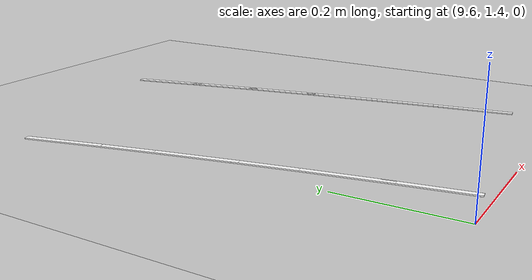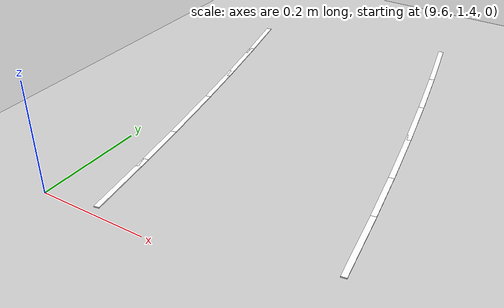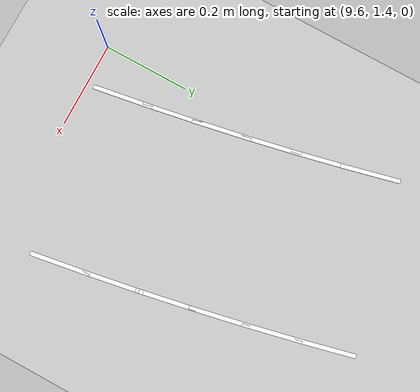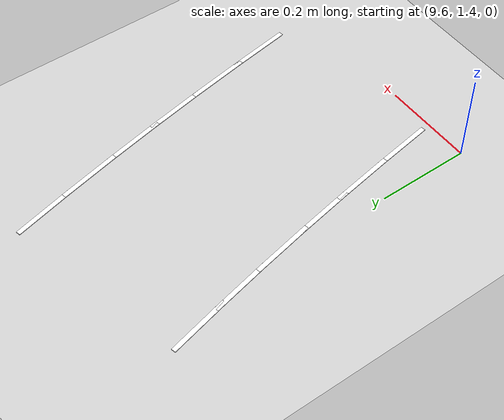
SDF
<sdf version="1.7">
 <world name="default">
  <model name="ground_plane">
   <static>1</static>
   <link name="link">
    <collision name="collision">
     <geometry><plane><normal>0 0 1</normal><size>100 100</size></plane></geometry>
     <surface>
      <contact><collide_bitmask>65535</collide_bitmask></contact>
      <friction><ode><mu>100</mu><mu2>50</mu2></ode></friction>
     </surface>
    </collision>
    <visual name="visual">
     <cast_shadows>0</cast_shadows>
     <geometry><plane><normal>0 0 1</normal><size>100 100</size></plane></geometry>
     <material>
      <script><uri>file://media/materials/scripts/gazebo.material</uri><name>Gazebo/Grey</name></script>
     </material>
    </visual>
   </link>
  </model>
  <model name="lane_line_left_107">
   <static>1</static>
   <link name="link">
    <pose>0 0 -0.004 0 -0 0</pose>
    <visual name="visual">
     <geometry><box><size>0.1374 0.01 0.01</size></box></geometry>
     <material><ambient>1 1 1 1</ambient><diffuse>1 1 1 1</diffuse></material>
    </visual>
    <collision name="collision"><geometry><box><size>0.1374 0.01 0.01</size></box></geometry></collision>
   </link>
   <pose>9.95943 2.15043 0 0 0 -1.33755</pose>
  </model>
  <model name="lane_line_right_107">
   <static>1</static>
   <link name="link">
    <pose>0 0 -0.004 0 -0 0</pose>
    <visual name="visual">
     <geometry><box><size>0.1374 0.01 0.01</size></box></geometry>
     <material><ambient>1 1 1 1</ambient><diffuse>1 1 1 1</diffuse></material>
    </visual>
    <collision name="collision"><geometry><box><size>0.1374 0.01 0.01</size></box></geometry></collision>
   </link>
   <pose>9.57026 2.05798 0 0 0 -1.33755</pose>
  </model>
  <model name="lane_line_left_108">
   <static>1</static>
   <link name="link">
    <pose>0 0 -0.004 0 -0 0</pose>
    <visual name="visual">
     <geometry><box><size>0.1383 0.01 0.01</size></box></geometry>
     <material><ambient>1 1 1 1</ambient><diffuse>1 1 1 1</diffuse></material>
    </visual>
    <collision name="collision"><geometry><box><size>0.1383 0.01 0.01</size></box></geometry></collision>
   </link>
   <pose>9.98647 2.03258 0 0 0 -1.35284</pose>
  </model>
  <model name="lane_line_right_108">
   <static>1</static>
   <link name="link">
    <pose>0 0 -0.004 0 -0 0</pose>
    <visual name="visual">
     <geometry><box><size>0.1383 0.01 0.01</size></box></geometry>
     <material><ambient>1 1 1 1</ambient><diffuse>1 1 1 1</diffuse></material>
    </visual>
    <collision name="collision"><geometry><box><size>0.1383 0.01 0.01</size></box></geometry></collision>
   </link>
   <pose>9.59594 1.94609 0 0 0 -1.35284</pose>
  </model>
  <model name="lane_line_left_109">
   <static>1</static>
   <link name="link">
    <pose>0 0 -0.004 0 -0 0</pose>
    <visual name="visual">
     <geometry><box><size>0.1392 0.01 0.01</size></box></geometry>
     <material><ambient>1 1 1 1</ambient><diffuse>1 1 1 1</diffuse></material>
    </visual>
    <collision name="collision"><geometry><box><size>0.1392 0.01 0.01</size></box></geometry></collision>
   </link>
   <pose>10.0119 1.91353 0 0 0 -1.36779</pose>
  </model>
  <model name="lane_line_right_109">
   <static>1</static>
   <link name="link">
    <pose>0 0 -0.004 0 -0 0</pose>
    <visual name="visual">
     <geometry><box><size>0.1392 0.01 0.01</size></box></geometry>
     <material><ambient>1 1 1 1</ambient><diffuse>1 1 1 1</diffuse></material>
    </visual>
    <collision name="collision"><geometry><box><size>0.1392 0.01 0.01</size></box></geometry></collision>
   </link>
   <pose>9.62012 1.83289 0 0 0 -1.36779</pose>
  </model>
  <model name="lane_line_left_110">
   <static>1</static>
   <link name="link">
    <pose>0 0 -0.004 0 -0 0</pose>
    <visual name="visual">
     <geometry><box><size>0.14 0.01 0.01</size></box></geometry>
     <material><ambient>1 1 1 1</ambient><diffuse>1 1 1 1</diffuse></material>
    </visual>
    <collision name="collision"><geometry><box><size>0.14 0.01 0.01</size></box></geometry></collision>
   </link>
   <pose>10.0357 1.79334 0 0 0 -1.38244</pose>
  </model>
  <model name="lane_line_right_110">
   <static>1</static>
   <link name="link">
    <pose>0 0 -0.004 0 -0 0</pose>
    <visual name="visual">
     <geometry><box><size>0.14 0.01 0.01</size></box></geometry>
     <material><ambient>1 1 1 1</ambient><diffuse>1 1 1 1</diffuse></material>
    </visual>
    <collision name="collision"><geometry><box><size>0.14 0.01 0.01</size></box></geometry></collision>
   </link>
   <pose>9.6428 1.71844 0 0 0 -1.38244</pose>
  </model>
  <model name="lane_line_left_111">
   <static>1</static>
   <link name="link">
    <pose>0 0 -0.004 0 -0 0</pose>
    <visual name="visual">
     <geometry><box><size>0.1408 0.01 0.01</size></box></geometry>
     <material><ambient>1 1 1 1</ambient><diffuse>1 1 1 1</diffuse></material>
    </visual>
    <collision name="collision"><geometry><box><size>0.1408 0.01 0.01</size></box></geometry></collision>
   </link>
   <pose>10.0579 1.67209 0 0 0 -1.39681</pose>
  </model>
  <model name="lane_line_right_111">
   <static>1</static>
   <link name="link">
    <pose>0 0 -0.004 0 -0 0</pose>
    <visual name="visual">
     <geometry><box><size>0.1408 0.01 0.01</size></box></geometry>
     <material><ambient>1 1 1 1</ambient><diffuse>1 1 1 1</diffuse></material>
    </visual>
    <collision name="collision"><geometry><box><size>0.1408 0.01 0.01</size></box></geometry></collision>
   </link>
   <pose>9.66397 1.60284 0 0 0 -1.39681</pose>
  </model>
  <model name="lane_line_left_112">
   <static>1</static>
   <link name="link">
    <pose>0 0 -0.004 0 -0 0</pose>
    <visual name="visual">
     <geometry><box><size>0.1415 0.01 0.01</size></box></geometry>
     <material><ambient>1 1 1 1</ambient><diffuse>1 1 1 1</diffuse></material>
    </visual>
    <collision name="collision"><geometry><box><size>0.1415 0.01 0.01</size></box></geometry></collision>
   </link>
   <pose>10.0785 1.54983 0 0 0 -1.41092</pose>
  </model>
  <model name="lane_line_right_112">
   <static>1</static>
   <link name="link">
    <pose>0 0 -0.004 0 -0 0</pose>
    <visual name="visual">
     <geometry><box><size>0.1415 0.01 0.01</size></box></geometry>
     <material><ambient>1 1 1 1</ambient><diffuse>1 1 1 1</diffuse></material>
    </visual>
    <collision name="collision"><geometry><box><size>0.1415 0.01 0.01</size></box></geometry></collision>
   </link>
   <pose>9.68363 1.48616 0 0 0 -1.41092</pose>
  </model>
 </world>
</sdf>
